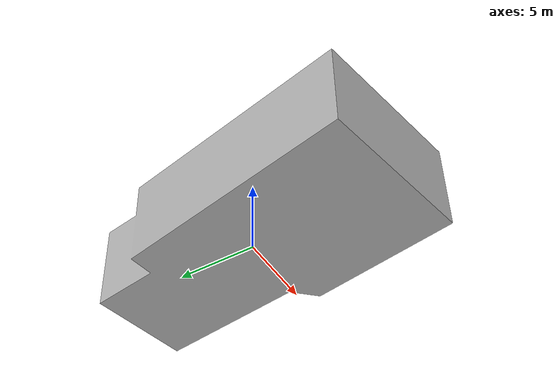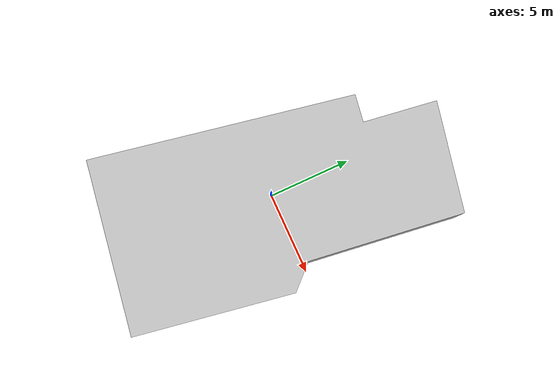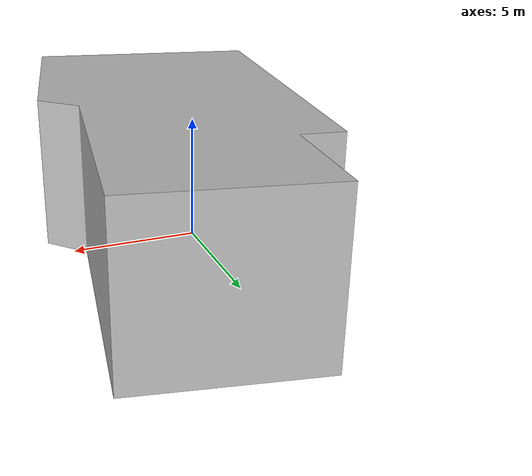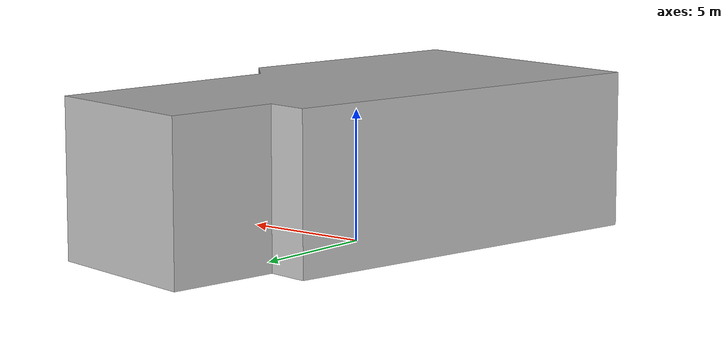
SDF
<?xml version="1.0" ?>
<sdf version="1.7">
  <model name="building_0001_assumed_a_apeadeiro_em_caminho_de_ferro">
    <static>true</static>
    <link name="building_link">
      <visual name="building_visual">
        <geometry>
          <mesh>
            <uri>model://building_0001_assumed_a_apeadeiro_em_caminho_de_ferro/meshes/construction_0001_assumed_A_Apeadeiro_em_caminho_de_ferro_h6m.obj</uri>
          </mesh>
        </geometry>
      </visual>
    <collision name="building_collision">
      <geometry>
        <mesh>
          <uri>model://building_0001_assumed_a_apeadeiro_em_caminho_de_ferro/meshes/construction_0001_assumed_A_Apeadeiro_em_caminho_de_ferro_h6m.obj</uri>
        </mesh>
      </geometry>
    </collision>
    </link>
  </model>
</sdf>
